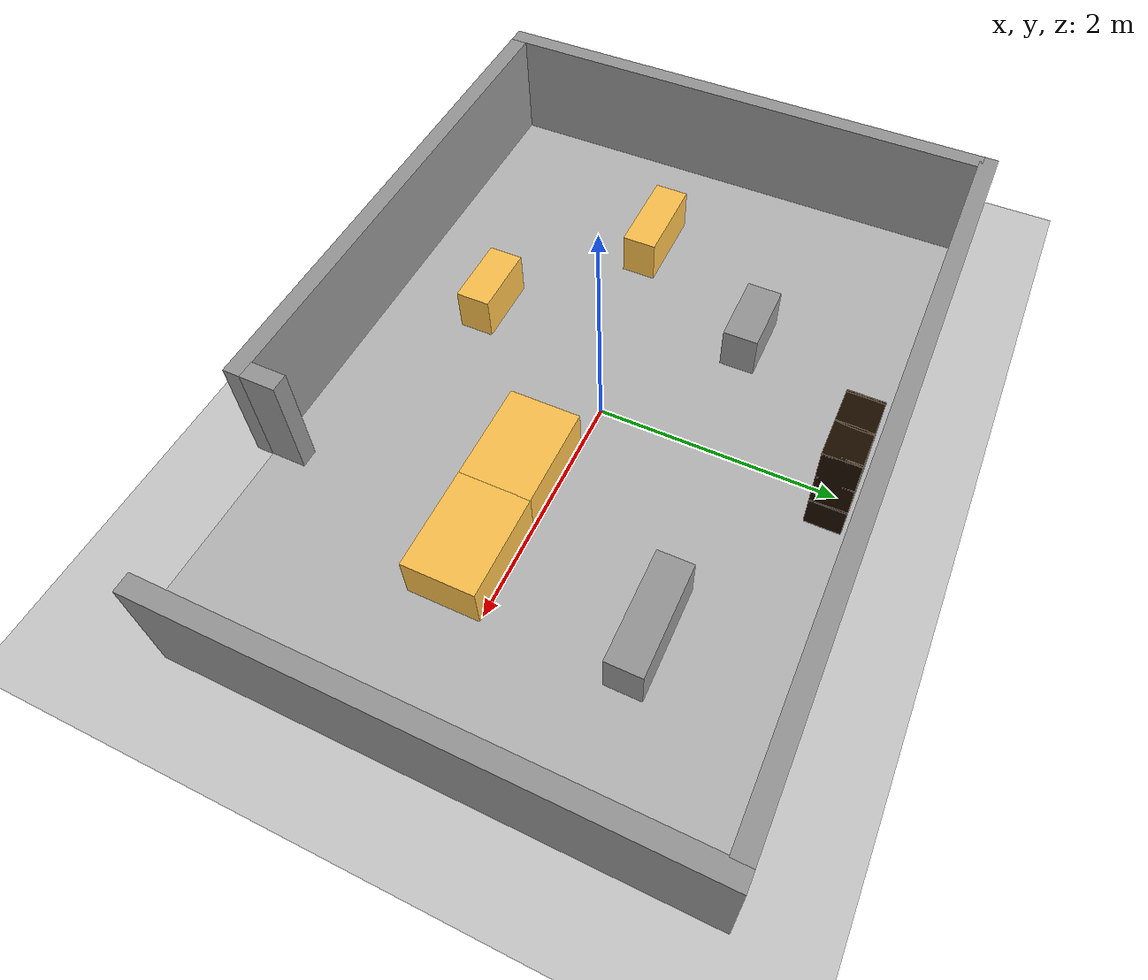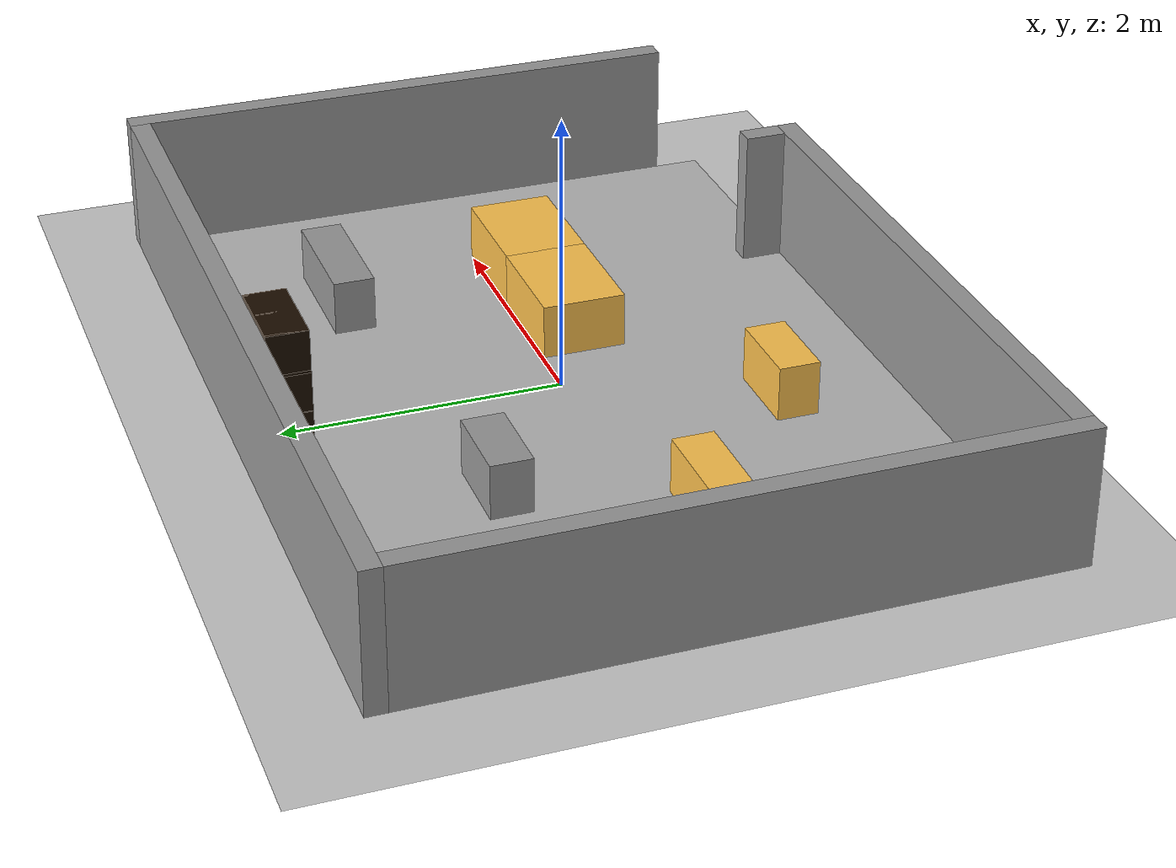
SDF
<sdf version="1.5">
 <world name="default">
  <scene><shadows>true</shadows></scene>
  <light name="sun" type="directional">
   <pose>0 0 10 0 -0 0</pose>
   <diffuse>0.8 0.8 0.8 1</diffuse>
   <specular>0.1 0.1 0.1 1</specular>
   <attenuation>
    <range>1000</range>
    <constant>0.9</constant>
    <linear>0.01</linear>
    <quadratic>0.001</quadratic>
   </attenuation>
   <direction>-0.5 0.5 -1</direction>
  </light>
  <physics type="ode">
   <max_step_size>0.001</max_step_size>
   <real_time_factor>1</real_time_factor>
   <real_time_update_rate>1000</real_time_update_rate>
   <gravity>0 0 -9.8</gravity>
  </physics>
  <include><uri>model://ground_plane</uri></include>
  <include><uri>model://Workshop</uri></include>
  <include><pose>-1.936710 -0.343286 0.013 0 0 -1.57</pose><uri>model://Box_15x30</uri></include>
  <include><pose>1.636 -0.3 0.013 0 0 0</pose><uri>model://Box_33x15</uri></include>
  <include><pose>0.8 -0.3 0.013 0 0 0</pose><uri>model://Box_33x15</uri></include>
  <include><pose>1.658951 1.141109 0.013 0 0 0</pose><uri>model://Box_36x15W</uri></include>
  <include><pose>0 1.986729 0.013002 0 0 0</pose><uri>model://6_Cube_StorageE</uri></include>
  <include><pose>-0.653226 -1.356719 0.013 0 0 0</pose><uri>model://Box_24x15M</uri></include>
  <include><pose>-1.184366 0.857670 0.013 0 0 0</pose><uri>model://Box_24x15W</uri></include>
 </world>
</sdf>

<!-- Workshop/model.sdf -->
<sdf version='1.6'>
  <model name='Workshop'>

    <link name='Wall_10'>
      <collision name='Wall_10_Collision'>
        <geometry>
          <box>
            <size>6.26 0.15 1</size>
          </box>
        </geometry>
        <pose frame=''>0 0 0.5 0 -0 0</pose>
      </collision>
      <visual name='Wall_10_Visual'>
        <pose frame=''>0 0 0.5 0 -0 0</pose>
        <geometry>
          <box>
            <size>6.26 0.15 1</size>
          </box>
        </geometry>
        <material>
          <script>
            <uri>file://media/materials/scripts/gazebo.material</uri>
            <name>Gazebo/Grey</name>
          </script>
          <ambient>0 0 0 1</ambient>
        </material>
      </visual>
      <pose frame=''>-0.0745 2.24856 0 0 0 0</pose>
    </link>
    <link name='Wall_11'>
      <collision name='Wall_11_Collision'>
        <geometry>
          <box>
            <size>4.199944 0.15 1</size>
          </box>
        </geometry>
        <pose frame=''>0 0 0.5 0 -0 0</pose>
      </collision>
      <visual name='Wall_11_Visual'>
        <pose frame=''>0 0 0.5 0 -0 0</pose>
        <geometry>
          <box>
            <size>4.199944 0.15 1</size>
          </box>
        </geometry>
        <material>
          <script>
            <uri>file://media/materials/scripts/gazebo.material</uri>
            <name>Gazebo/Grey</name>
          </script>
          <ambient>0 0 0 1</ambient>
        </material>
      </visual>
      <pose frame=''>3.12000 0.223500 0 0 0 -1.5708</pose>
    </link>
    <link name='Wall_13'>
      <collision name='Wall_13_Collision'>
        <geometry>
          <box>
            <size>4.557060 0.15 1</size>
          </box>
        </geometry>
        <pose frame=''>0 0 0.5 0 -0 0</pose>
      </collision>
      <visual name='Wall_13_Visual'>
        <pose frame=''>0 0 0.5 0 -0 0</pose>
        <geometry>
          <box>
            <size>4.557060 0.15 1</size>
          </box>
        </geometry>
        <material>
          <script>
            <uri>file://media/materials/scripts/gazebo.material</uri>
            <name>Gazebo/Grey</name>
          </script>
          <ambient>0 0 0 1</ambient>
        </material>
      </visual>
      <pose frame=''>-3.129500 -0.075000 0 0 0 -1.5708</pose>
    </link>
    <link name='Wall_15'>
      <collision name='Wall_15_Collision'>
        <geometry>
          <box>
            <size>4.521 0.15 1</size>
          </box>
        </geometry>
        <pose frame=''>0 0 0.5 0 -0 0</pose>
      </collision>
      <visual name='Wall_15_Visual'>
        <pose frame=''>0 0 0.5 0 -0 0</pose>
        <geometry>
          <box>
            <size>4.521 0.15 1</size>
          </box>
        </geometry>
        <material>
          <script>
            <uri>file://media/materials/scripts/gazebo.material</uri>
            <name>Gazebo/Grey</name>
          </script>
          <ambient>0 0 0 1</ambient>
        </material>
      </visual>
      <pose frame=''>-0.794000 -2.278500 0 0 -0 0</pose>
    </link>
    <link name='Wall_17'>
      <collision name='Wall_17_Collision'>
        <geometry>
          <box>
            <size>0.302 0.15 1</size>
          </box>
        </geometry>
        <pose frame=''>0 0 0.5 0 -0 0</pose>
      </collision>
      <visual name='Wall_17_Visual'>
        <pose frame=''>0 0 0.5 0 -0 0</pose>
        <geometry>
          <box>
            <size>0.302 0.15 1</size>
          </box>
        </geometry>
        <material>
          <script>
            <uri>file://media/materials/scripts/gazebo.material</uri>
            <name>Gazebo/Grey</name>
          </script>
          <ambient>0 0 0 1</ambient>
        </material>
      </visual>
      <pose frame=''>1.392000 -2.057440 0 0 -0 1.5708</pose>
    </link>
    <link name='Wall_19'>
      <collision name='Wall_19_Collision'>
        <geometry>
          <box>
            <size>6.099 4.38 0.013</size>
          </box>
        </geometry>
        <pose frame=''>0 0 0.0065 0 -0 0</pose>
	 <surface>
          <friction>
            <ode>
              <mu>1</mu>
              <mu2>1</mu2>
            </ode>
          </friction>
	<bounce/>
            <contact>
              <ode/>
            </contact>
        </surface>
 	<max_contacts>10</max_contacts>
      </collision>
      <visual name='Wall_19_Visual'>
        <pose frame=''>0 0 0.0065 0 -0 0</pose>
        <geometry>
          <box>
            <size>6.099 4.38 0.013</size>
          </box>
        </geometry>
           <material>
          <script>
            <uri>model://Workshop/materials/scripts</uri>
            <uri>model://Workshop/materials/textures</uri>
            <name>rubber</name>
          </script>
        </material>
      </visual>
      <pose frame=''>-0.005116 -0.013556 0 0 -0 0</pose>
 <velocity_decay>
          <linear>0</linear>
          <angular>0</angular>
        </velocity_decay>
        <self_collide>0</self_collide>
        <kinematic>0</kinematic>
        <gravity>1</gravity>
    </link>
    <static>1</static>
  </model>
</sdf>

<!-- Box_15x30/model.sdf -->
<sdf version='1.6'>
  <model name='Box_15x30'>
    <link name='Wall'>
     <pose frame=''>0 0.0 0.1985 0 0 0</pose>
	<inertial>
	  <mass>5</mass>
	   <inertia>
	     <ixx>0.3089</ixx>
	     <iyy>0.1022</iyy>
	     <izz>0.2797</izz>
    	     <ixy>0</ixy>
	     <ixz>0</ixz>
	     <iyz>0</iyz>
	   </inertia>
	</inertial>
      <collision name='Wall_Collision'>
        <geometry>
          <box>
            <size>0.296 0.764 0.397</size>
          </box>
        </geometry>
      </collision>
      <visual name='Wall_Visual'>
        <geometry>
          <box>
            <size>0.296 0.764 0.397</size>
          </box>
        </geometry>
        <material>
          <script>
            <uri>file://media/materials/scripts/gazebo.material</uri>
            <name>Gazebo/Grey</name>
          </script>
          <ambient>1 0.764706 0.305882 1</ambient>
        </material>
      </visual>
     </link>

    <static>1</static>
  </model>
</sdf>

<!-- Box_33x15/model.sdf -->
<sdf version='1.6'>
  <model name='Box_33x15'>
    <link name='Wall'>
    <pose frame=''>0 0 0.1985 0 0 0</pose>
	<inertial>
	  <mass>5</mass>
	   <inertia>
	     <ixx>0.2157</ixx>
	     <iyy>0.3597</iyy>
	     <izz>0.4440</izz>
    	     <ixy>0</ixy>
	     <ixz>0</ixz>
	     <iyz>0</iyz>
	   </inertia>
	</inertial>
      <collision name='Wall_Collision'>
        <geometry>
          <box>
            <size>0.84 0.6 0.397 </size>
          </box>
        </geometry>
       </collision>
      <visual name='Wall_Visual'>
       <geometry>
          <box>
            <size>0.84 0.6 0.397 </size>
          </box>
        </geometry>
        <material>
          <script>
            <uri>file://media/materials/scripts/gazebo.material</uri>
            <name>Gazebo/Grey</name>
          </script>
          <ambient>1 0.764706 0.305882 1</ambient>
        </material>
      </visual>
     </link>

    <static>1</static>
  </model>
</sdf>

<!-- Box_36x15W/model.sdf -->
<sdf version='1.6'>
  <model name='Box_36x15W'>
     <link name='Wall'>
 	<pose frame=''>0 0 0.1985 0 0 0</pose>
	<inertial>
	  <mass>5</mass>
	   <inertia>
	     <ixx>0.1022</ixx>
	     <iyy>0.4107</iyy>
	     <izz>0.3815</izz>
    	     <ixy>0</ixy>
	     <ixz>0</ixz>
	     <iyz>0</iyz>
	   </inertia>
	</inertial>
      <collision name='Wall_Collision'>
        <geometry>
          <box>
            <size>0.91 0.296 0.397</size>
          </box>
        </geometry>
      </collision>
      <visual name='Wall_Visual'>
          <geometry>
          <box>
            <size>0.91 0.296 0.397</size>
          </box>
        </geometry>
        <material>
          <script>
            <uri>file://media/materials/scripts/gazebo.material</uri>
            <name>Gazebo/Grey</name>
          </script>
          <ambient>1 1 1 1</ambient>
        </material>
      </visual>
    </link>

    <static>1</static>
  </model>
</sdf>

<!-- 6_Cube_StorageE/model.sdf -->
<sdf version='1.6'>
  <model name='6_Cube_StorageE'>

    <link name='Wall_0'>
    <pose frame=''>0 0 0.01 0 -0 0</pose>
	<inertial>
	  <mass>1.6201</mass>
	   <inertia>
	     <ixx>0.0119</ixx>
	     <iyy>0.0631</iyy>
	     <izz>0.0513</izz>
    	     <ixy>0</ixy>
	     <ixz>0</ixz>
	     <iyz>0</iyz>
	   </inertia>
	</inertial>
      <collision name='Wall_0_Collision'>
        <geometry>
          <box>
            <size>0.616 0.296 0.02</size>
          </box>
        </geometry>
      </collision>
      <visual name='Wall_0_Visual'>
        <geometry>
          <box>
            <size>0.616 0.296 0.02</size>
          </box>
        </geometry>
        <material>
          <script>
            <uri>file://media/materials/scripts/gazebo.material</uri>
            <name>Gazebo/Grey</name>
          </script>
          <ambient>0.105882 0.0509804 0 1</ambient>
        </material>
      </visual>
   </link>

     <joint type="fixed" name="0_2">
      <pose frame=''>-0.308 0 0 0 0 0</pose>
         <parent>Wall_2</parent>
  	 <child>Wall_0</child>
	 <axis>
	   <xyz>1 0 0</xyz>
	 </axis>
       </joint>

  <joint type="fixed" name="0_12">
      <pose frame=''>0 0 0 0 0 0</pose>
         <parent>Wall_12</parent>
  	 <child>Wall_0</child>
	 <axis>
	   <xyz>0 0 1</xyz>
	 </axis>
       </joint>

  <joint type="fixed" name="0_4">
      <pose frame=''>0.308 0 0 0 0 0</pose>
         <parent>Wall_4</parent>
  	 <child>Wall_0</child>
	 <axis>
	   <xyz>1 0 0</xyz>
	 </axis>
       </joint>

    <link name='Wall_10'>
      <pose frame=''>0 0 0.610 0 0 0</pose>
	<inertial>
	  <mass>1.6201</mass>
	   <inertia>
	     <ixx>0.0119</ixx>
	     <iyy>0.0631</iyy>
	     <izz>0.0513</izz>
    	     <ixy>0</ixy>
	     <ixz>0</ixz>
	     <iyz>0</iyz>
	   </inertia>
	</inertial>
      <collision name='Wall_10_Collision'>
        <geometry>
          <box>
            <size>0.616 0.296 0.02 </size>
          </box>
        </geometry>
      </collision>
      <visual name='Wall_10_Visual'>
          <geometry>
          <box>
            <size>0.616 0.296 0.02</size>
          </box>
        </geometry>
        <material>
          <script>
            <uri>file://media/materials/scripts/gazebo.material</uri>
            <name>Gazebo/Grey</name>
          </script>
          <ambient>0.105882 0.0509804 0 1</ambient>
        </material>
      </visual>
    </link>

     <joint type="fixed" name="10_2">
      <pose frame=''>-0.308 0 0 0 0 0</pose>
         <parent>Wall_2</parent>
  	 <child>Wall_10</child>
	 <axis>
	   <xyz>1 0 0</xyz>
	 </axis>
       </joint>

  <joint type="fixed" name="10_12">
      <pose frame=''>0 0 0 0 0 0</pose>
         <parent>Wall_12</parent>
  	 <child>Wall_10</child>
	 <axis>
	   <xyz>0 0 1</xyz>
	 </axis>
       </joint>

  <joint type="fixed" name="10_4">
      <pose frame=''>0.308 0 0 0 0 0</pose>
         <parent>Wall_4</parent>
  	 <child>Wall_10</child>
	 <axis>
	   <xyz>1 0 0</xyz>
	 </axis>
       </joint>

    <link name='Wall_12'>
  <pose frame=''>0 0 0.4575 0 0 0</pose>
	<inertial>
	  <mass>2.4065</mass>
	   <inertia>
	     <ixx>0.0177</ixx>
	     <iyy>0.1855</iyy>
	     <izz>0.1680</izz>
    	     <ixy>0</ixy>
	     <ixz>0</ixz>
	     <iyz>0</iyz>
	   </inertia>
	</inertial>
      <collision name='Wall_12_Collision'>
        <geometry>
          <box>
            <size>0.02 0.296 0.915</size>
          </box>
        </geometry>
      </collision>
      <visual name='Wall_12_Visual'>
         <geometry>
          <box>
            <size>0.02 0.296 0.915</size>
          </box>
        </geometry>
        <material>
          <script>
            <uri>file://media/materials/scripts/gazebo.material</uri>
            <name>Gazebo/Grey</name>
          </script>
          <ambient>0.105882 0.0509804 0 1</ambient>
        </material>
      </visual>
    </link>

    <link name='Wall_2'>
      <pose frame=''>-0.298 0 0.4575 0 0 0</pose>
	<inertial>
	  <mass>2.4065</mass>
	   <inertia>
	     <ixx>0.0177</ixx>
	     <iyy>0.1855</iyy>
	     <izz>0.1680</izz>
    	     <ixy>0</ixy>
	     <ixz>0</ixz>
	     <iyz>0</iyz>
	   </inertia>
	</inertial>
      <collision name='Wall_2_Collision'>
        <geometry>
          <box>
            <size>0.02 0.296 0.915</size>
          </box>
        </geometry>
      </collision>
      <visual name='Wall_2_Visual'>
        <geometry>
          <box>
            <size>0.02 0.296 0.915</size>
          </box>
        </geometry>
        <material>
          <script>
            <uri>file://media/materials/scripts/gazebo.material</uri>
            <name>Gazebo/Grey</name>
          </script>
          <ambient>0.105882 0.0509804 0 1</ambient>
        </material>
      </visual>
    </link>

    <link name='Wall_4'>
      <pose frame=''>0.298 0 0.4575 0 0 0</pose>
	<inertial>
	  <mass>2.4065</mass>
	   <inertia>
	     <ixx>0.0177</ixx>
	     <iyy>0.1855</iyy>
	     <izz>0.1680</izz>
    	     <ixy>0</ixy>
	     <ixz>0</ixz>
	     <iyz>0</iyz>
	   </inertia>
	</inertial>
      <collision name='Wall_4_Collision'>
        <geometry>
          <box>
            <size>0.02 0.296 0.915</size>
          </box>
        </geometry>
      </collision>
      <visual name='Wall_4_Visual'>
        <geometry>
          <box>
            <size>0.02 0.296 0.915</size>
          </box>
        </geometry>
        <material>
          <script>
            <uri>file://media/materials/scripts/gazebo.material</uri>
            <name>Gazebo/Grey</name>
          </script>
          <ambient>0.105882 0.0509804 0 1</ambient>
        </material>
      </visual>
    </link>

    <link name='Wall_6'>
     <pose frame=''>0 0 0.905 0 0 0</pose>
	<inertial>
	  <mass>1.6201</mass>
	   <inertia>
	     <ixx>0.0119</ixx>
	     <iyy>0.0631</iyy>
	     <izz>0.0513</izz>
    	     <ixy>0</ixy>
	     <ixz>0</ixz>
	     <iyz>0</iyz>
	   </inertia>
	</inertial>
      <collision name='Wall_6_Collision'>
        <geometry>
          <box>
            <size>0.616 0.296 0.02</size>
          </box>
        </geometry>
       </collision>
      <visual name='Wall_6_Visual'>
        <geometry>
          <box>
            <size>0.616 0.296 0.02</size>
          </box>
        </geometry>
        <material>
          <script>
            <uri>file://media/materials/scripts/gazebo.material</uri>
            <name>Gazebo/Grey</name>
          </script>
          <ambient>0.105882 0.0509804 0 1</ambient>
        </material>
      </visual>
     </link>

     <joint type="fixed" name="6_2">
      <pose frame=''>-0.308 0 0 0 0 0</pose>
         <parent>Wall_2</parent>
  	 <child>Wall_6</child>
	 <axis>
	   <xyz>2 0 0</xyz>
	 </axis>
       </joint>

  <joint type="fixed" name="6_12">
      <pose frame=''>0 0 0 0 0 0</pose>
         <parent>Wall_12</parent>
  	 <child>Wall_6</child>
	 <axis>
	   <xyz>0 0 1</xyz>
	 </axis>
       </joint>

  <joint type="fixed" name="6_4">
      <pose frame=''>0.308 0 0 0 0 0</pose>
         <parent>Wall_4</parent>
  	 <child>Wall_6</child>
	 <axis>
	   <xyz>1 0 0</xyz>
	 </axis>
       </joint>

    <link name='Wall_8'>
    <pose frame=''>0 0 0.305 0 0 0</pose>
	<inertial>
	  <mass>1.6201</mass>
	   <inertia>
	     <ixx>0.0119</ixx>
	     <iyy>0.0631</iyy>
	     <izz>0.0513</izz>
    	     <ixy>0</ixy>
	     <ixz>0</ixz>
	     <iyz>0</iyz>
	   </inertia>
	</inertial>
      <collision name='Wall_8_Collision'>
        <geometry>
          <box>
            <size>0.616 0.296 0.02</size>
          </box>
        </geometry>
       </collision>
      <visual name='Wall_8_Visual'>
        <geometry>
          <box>
            <size>0.616 0.296 0.02</size>
          </box>
        </geometry>
        <material>
          <script>
            <uri>file://media/materials/scripts/gazebo.material</uri>
            <name>Gazebo/Grey</name>
          </script>
          <ambient>0.105882 0.0509804 0 1</ambient>
        </material>
      </visual>
      </link>

     <joint type="fixed" name="8_2">
      <pose frame=''>-0.308 0 0 0 0 0</pose>
         <parent>Wall_2</parent>
  	 <child>Wall_8</child>
	 <axis>
	   <xyz>1 0 0</xyz>
	 </axis>
       </joint>

  <joint type="fixed" name="8_12">
      <pose frame=''>0 0 0 0 0 0</pose>
         <parent>Wall_12</parent>
  	 <child>Wall_8</child>
	 <axis>
	   <xyz>0 0 1</xyz>
	 </axis>
       </joint>

  <joint type="fixed" name="8_4">
      <pose frame=''>0.308 0 0 0 0 0</pose>
         <parent>Wall_4</parent>
  	 <child>Wall_8</child>
	 <axis>
	   <xyz>1 0 0</xyz>
	 </axis>
       </joint>

    <static>1</static>
  </model>
</sdf>

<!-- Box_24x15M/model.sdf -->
<sdf version='1.6'>
  <model name='Box_24x15M'>
    <link name='Wall'>
	<pose frame=''>0 0 0.1985 0 -0 0</pose>
	<inertial>
	  <mass>5</mass>
	   <inertia>
	     <ixx>0.1022</ixx>
	     <iyy>0.2197</iyy>
	     <izz>0.1905</izz>
    	     <ixy>0</ixy>
	     <ixz>0</ixz>
	     <iyz>0</iyz>
	   </inertia>
	</inertial>
      <collision name='Wall_Collision'>
        <geometry>
          <box>
            <size>0.608 0.296 0.397 </size>
          </box>
        </geometry>

      </collision>
      <visual name='Wall_Visual'>

        <geometry>
          <box>
            <size>0.608 0.296 0.397</size>
          </box>
        </geometry>
       <material>
          <script>
            <uri>file://media/materials/scripts/gazebo.material</uri>
            <name>Gazebo/Grey</name>
          </script>
          <ambient>1 0.764706 0.305882 1</ambient>
        </material>
      </visual>
    </link>

    <static>1</static>
  </model>
</sdf>

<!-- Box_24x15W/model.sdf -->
<sdf version='1.6'>
  <model name='Box_24x15W'>
    <link name='Wall'>
	<pose frame=''>0 0 0.1985 0 0 0</pose>
	<inertial>
	  <mass>5</mass>
	   <inertia>
	     <ixx>0.1022</ixx>
	     <iyy>0.2197</iyy>
	     <izz>0.1905</izz>
    	     <ixy>0</ixy>
	     <ixz>0</ixz>
	     <iyz>0</iyz>
	   </inertia>
	</inertial>
      <collision name='Wall_Collision'>
        <geometry>
          <box>
            <size>0.608 0.296 0.397 </size>
          </box>
        </geometry>

      </collision>
      <visual name='Wall_Visual'>

        <geometry>
          <box>
            <size>0.608 0.296 0.397</size>
          </box>
        </geometry>
        <material>
          <script>
            <uri>file://media/materials/scripts/gazebo.material</uri>
            <name>Gazebo/Grey</name>
          </script>
          <ambient>1 1 1 1</ambient>
        </material>
      </visual>
     </link>

    <static>1</static>
  </model>
</sdf>
